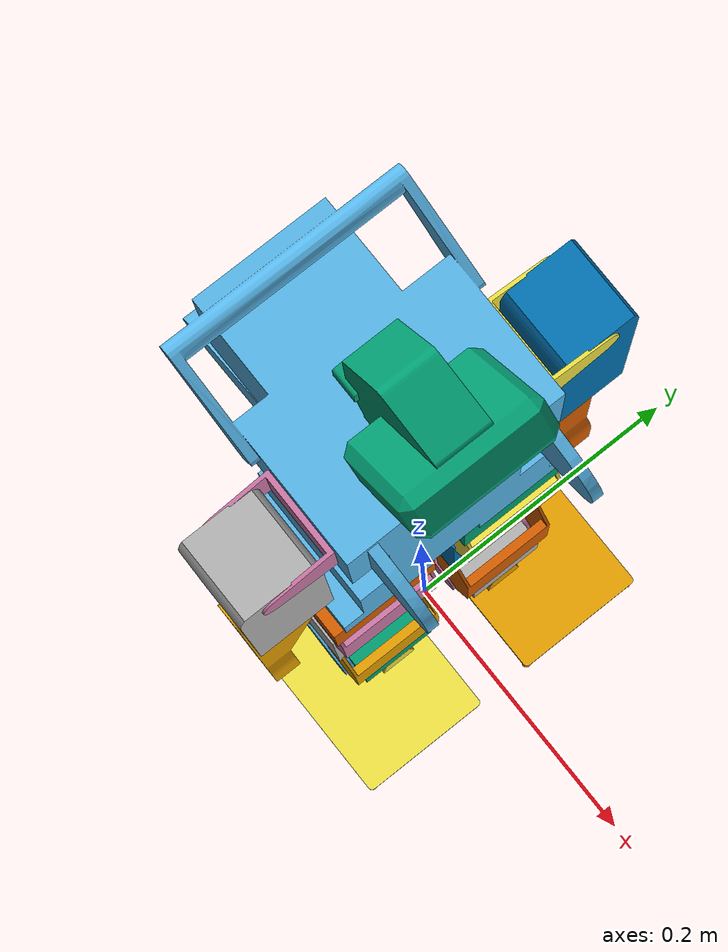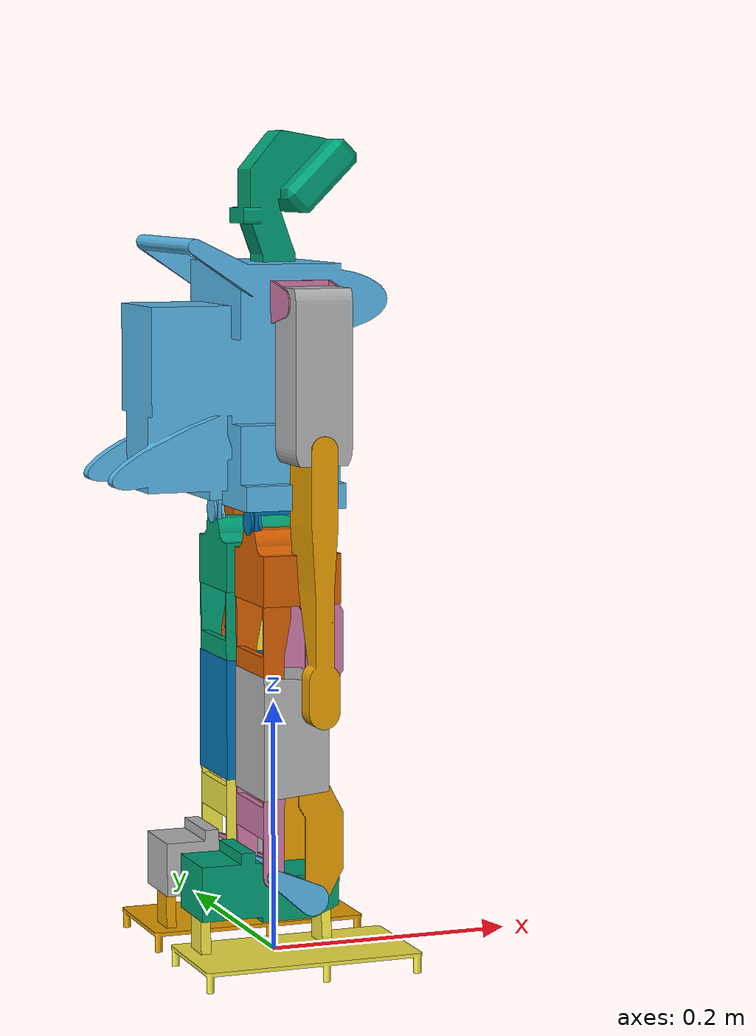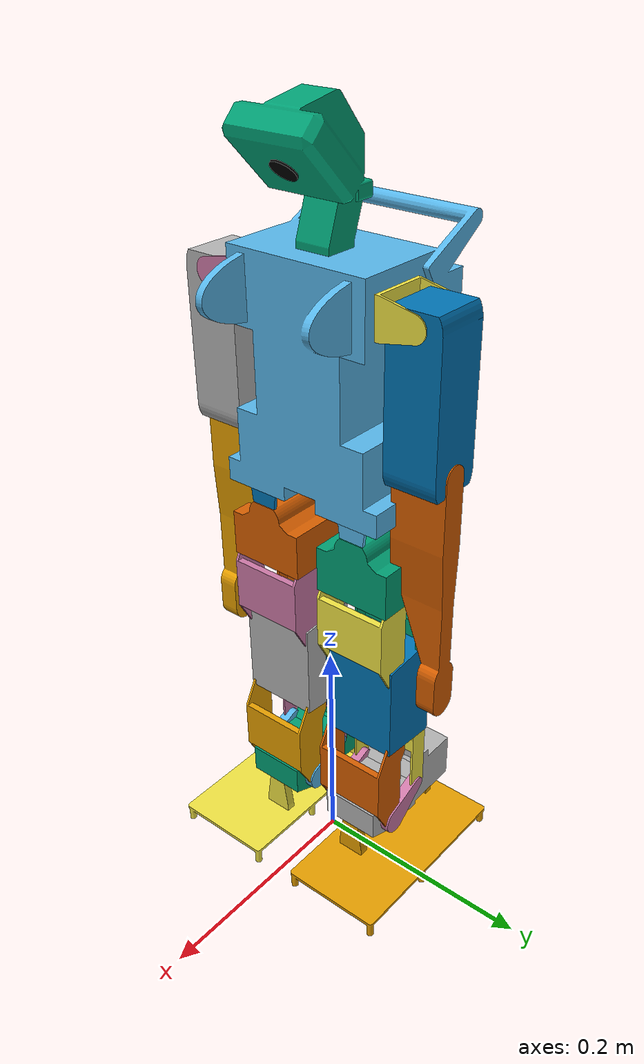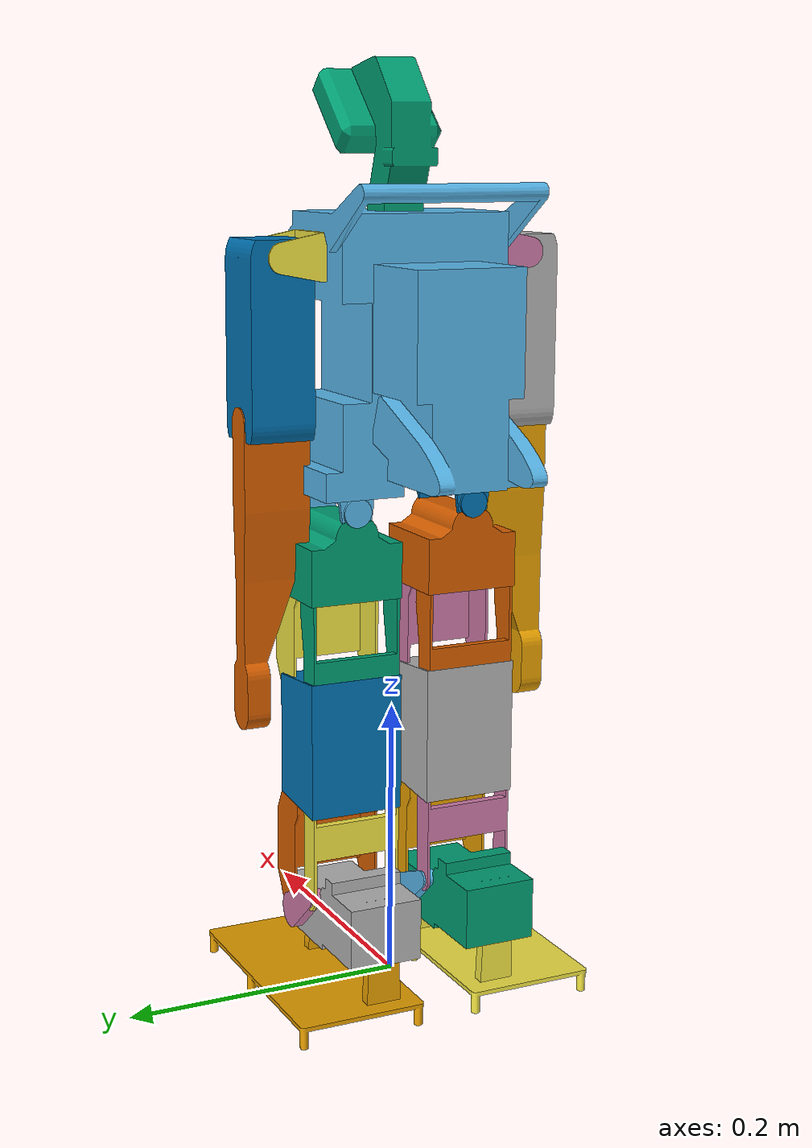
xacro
<?xml version="1.0"?>
<robot xmlns:xacro="http://www.ros.org/wiki/xacro" name="gankenkun">
  <!--Constants
  for robot dimensions -->
  <xacro:property name="PI" value="3.1415926535897931"/>

  <!-- Import Rviz color -->
  <xacro:include filename="$(find opr_description)/urdf/materials.xacro"/>

  <!-- import empty link -->
  <link name="base_link"/>
  <!-- uncomment this part to fixed the body in space (ignore gravity) -->

  <!-- import robot parts -->
  <xacro:include filename="$(find opr_description)/urdf/version4/body/body.urdf.xacro"/>
  <xacro:include filename="$(find opr_description)/urdf/version4/head/head.urdf.xacro"/>
  <xacro:include filename="$(find opr_description)/urdf/version4/arms/left_arm.urdf.xacro"/>
  <xacro:include filename="$(find opr_description)/urdf/version4/arms/right_arm.urdf.xacro"/>
  <xacro:include filename="$(find opr_description)/urdf/version4/legs/left_leg.urdf.xacro"/>
  <xacro:include filename="$(find opr_description)/urdf/version4/legs/right_leg.urdf.xacro"/>

  <!-- gazebo reference -->
  <xacro:include filename="$(find opr_description)/urdf/gazebo.xacro"/>
  <xacro:include filename="$(find opr_description)/urdf/version4/body/body.gazebo.xacro"/>
  <xacro:include filename="$(find opr_description)/urdf/version4/head/head.gazebo.xacro"/>
  <xacro:include filename="$(find opr_description)/urdf/version4/arms/arms.gazebo.xacro"/>
  <xacro:include filename="$(find opr_description)/urdf/version4/legs/legs.gazebo.xacro"/>

  <!-- transmission -->
  <xacro:include filename="$(find opr_description)/urdf/version4/head/head.transmission.xacro"/>
  <xacro:include filename="$(find opr_description)/urdf/version4/arms/arms.transmission.xacro"/>
  <xacro:include filename="$(find opr_description)/urdf/version4/legs/legs.transmission.xacro"/>

  <!-- sensors -->
  <xacro:include filename="$(find opr_description)/urdf/version4/sensors/imu.xacro"/>
  <xacro:imu name="imu" parent="body_link" update_rate="100">
    <origin xyz="0 0 0" rpy="0 0 0"/>
  </xacro:imu>
  <xacro:include filename="$(find opr_description)/urdf/version4/sensors/camera.xacro"/>
  <xacro:camera name="camera" parent="head_yaw_link">
    <origin xyz="0.036496 0 0.055504" rpy="0 ${pi /4} 0"/>
  </xacro:camera>
</robot>

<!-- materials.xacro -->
<robot xmlns:xacro="http://www.ros.org/wiki/xacro">
  <xacro:macro name="default_color" params="name color">
    <material name="${name}">
      <color rgba="${color}"/>
    </material>
  </xacro:macro>

  <xacro:default_color name="black" color="0.0 0.0 0.0 1.0"/>
  <xacro:default_color name="blue" color="0.0 0.0 0.8 1.0"/>
  <xacro:default_color name="green" color="0.0 0.8 0.0 1.0"/>
  <xacro:default_color name="grey" color="0.5 0.5 0.5 1.0"/>
  <xacro:default_color name="orange" color="${255/255} ${108/255} ${10/255} 1.0"/>
  <xacro:default_color name="brown" color="${255/255} ${207/255} ${195/255} 1.0"/>
  <xacro:default_color name="red" color="0.8 0.0 0.0 1.0"/>
  <xacro:default_color name="white" color="1.0 1.0 1.0 1.0"/>
</robot>

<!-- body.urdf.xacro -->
<robot xmlns:xacro="http://www.ros.org/wiki/xacro">
  <!-- body joint-->
  <joint name="body_joint" type="fixed">
    <parent link="base_link"/>
    <child link="body_link"/>
    <origin xyz="0 0 0.4635" rpy="0 0 0"/>
  </joint>

  <!-- body link -->
  <link name="body_link">
    <inertial>
      <origin xyz="-0.022825 0.000073 -0.015720" rpy="0 0 0"/>
      <mass value="2.645331"/>
      <inertia ixx="0.007742297482" ixy="0.000005961013" ixz="0.000422502364" iyy="0.008034384246" iyz="-0.000003797186" izz="0.003984603997"/>
    </inertial>
    <visual>
      <geometry>
        <mesh filename="package://opr_description/meshes/version4/TrunkLight.stl"/>
      </geometry>
    </visual>
    <collision>
      <origin xyz="-0.03270612440339107 -0.00010220211766156579 -0.007181904014356449" rpy="-2.882630121591322 -0.0013257236025648262 1.5704451281988223"/>
      <geometry>
        <box size="0.14548409358720668 0.1783637674020797 0.2041607213195921"/>
      </geometry>
    </collision>
  </link>
</robot>

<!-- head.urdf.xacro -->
<robot xmlns:xacro="http://www.ros.org/wiki/xacro">
  <!-- head joints -->
  <joint name="head_yaw_joint" type="revolute">
    <parent link="body_link"/>
    <child link="head_yaw_link"/>
    <origin xyz="0 0 0.0875" rpy="0 0 0"/>
    <limit effort="1000" lower="${-3*PI/4}" upper="${3*PI/4}" velocity="4.8"/>
    <axis xyz="0 0 1"/>
    <dynamics damping="0.1" friction="0.0"/>
  </joint>

  <!-- head link -->
  <link name="head_yaw_link">
    <inertial>
      <origin xyz="0.019189 -0.000533 0.057803" rpy="0 0 0"/>
      <mass value="0.160477"/>
      <inertia ixx="0.000135811588" ixy="-0.000000293359" ixz="-0.000041997404" iyy="0.000151374671" iyz="-0.000000078967" izz="0.000124729778"/>
    </inertial>
    <visual>
      <geometry>
        <mesh filename="package://opr_description/meshes/version4/HeadLight.stl"/>
      </geometry>
    </visual>
    <collision>
      <origin xyz="0.0045492063207171664 8.625779647839552e-19 0.049218710724377945" rpy="-3.141592653589793 0.5153769953275367 -1.2246467991473535e-16"/>
      <geometry>
        <box size="0.06765749574662422 0.07400000095367433 0.1137128056371003"/>
      </geometry>
    </collision>
  </link>
</robot>

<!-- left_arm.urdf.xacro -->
<robot xmlns:xacro="http://www.ros.org/wiki/xacro">
  <!-- arm joints -->
  <joint name="left_shoulder_pitch_joint" type="revolute">
    <parent link="body_link"/>
    <child link="left_shoulder_link"/>
    <origin xyz="0 0.0615 0.056" rpy="0 0 0"/>
    <limit effort="1000" lower="${-3*PI/4}" upper="${3*PI/4}" velocity="4.8"/>
    <axis xyz="0 1 0"/>
    <dynamics damping="0.1" friction="0.0"/>
  </joint>
  <joint name="left_shoulder_roll_joint" type="revolute">
    <parent link="left_shoulder_link"/>
    <child link="left_arm_link"/>
    <origin xyz="0 0.03 0" rpy="0 0 0"/>
    <limit effort="1000" lower="${-PI}" upper="${PI}" velocity="4.8"/>
    <axis xyz="1 0 0"/>
    <dynamics damping="0.1" friction="0.0"/>
  </joint>
  <joint name="left_elbow_pitch_joint" type="revolute">
    <parent link="left_arm_link"/>
    <child link="left_forearm_link"/>
    <origin xyz="0 0 -0.109" rpy="0 0 0"/>
    <limit effort="1000" lower="${-3*PI/4}" upper="${3*PI/4}" velocity="4.8"/>
    <axis xyz="0 1 0"/>
    <dynamics damping="0.1" friction="0.0"/>
  </joint>

  <!-- arm links -->
  <link name="left_shoulder_link">
    <inertial>
      <origin xyz="0 0.007843 0" rpy="${PI/2} 0 0"/>
      <mass value="0.031036"/>
      <inertia ixx="0.000006857020" ixy="0.0" ixz="0.0" izz="0.000012483012" iyz="0.0" iyy="0.000014531649"/>
    </inertial>
    <visual>
      <origin xyz="0 0 0" rpy="${PI/2} 0 0"/>
      <geometry>
        <mesh filename="package://opr_description/meshes/version4/ShoulderLight.stl"/>
      </geometry>
    </visual>
    <collision>
      <origin xyz="0.0 0.01763494312763214 -1.0798288327200158e-18" rpy="-3.141592653589793 1.5707963267948966 0.0"/>
      <geometry>
        <box size="0.03200000151991844 0.04626988619565964 0.0502999983727932"/>
      </geometry>
    </collision>
  </link>
  <link name="left_arm_link">
    <inertial>
      <origin xyz="-0.000173 -0.000173 -0.0545" rpy="0 0 0"/>
      <mass value="0.198342"/>
      <inertia ixx="0.000398226787" ixy="0.0" ixz="0.0" iyy="0.000398226787" iyz="0.0" izz="0.000042097457"/>
    </inertial>
    <visual>
      <geometry>
        <mesh filename="package://opr_description/meshes/version4/LeftUpperArmLight.stl"/>
      </geometry>
    </visual>
    <collision>
      <origin xyz="9.999983012676572e-05 9.999983012676239e-05 -0.05449999962002039" rpy="3.141592653589793 -0.0 1.5707963267948966"/>
      <geometry>
        <box size="0.045299999415874474 0.04529999941587448 0.132999999448657"/>
      </geometry>
    </collision>
  </link>
  <link name="left_forearm_link">
    <inertial>
      <origin xyz="0 0.009824 -0.126417" rpy="0 0 0"/>
      <mass value="0.06313"/>
      <inertia ixx="0.000296886941" ixy="0.000000000007" ixz="-0.000000000026" iyy="0.000284555999" iyz="-0.000025954170" izz="0.000016240155"/>
    </inertial>
    <visual>
      <geometry>
        <mesh filename="package://opr_description/meshes/version4/ForeArmLight.stl"/>
      </geometry>
    </visual>
    <collision>
      <origin xyz="1.6544247971531333e-34 2.7018807354169517e-18 -0.10078542958945036" rpy="3.141592653589793 -0.0 3.141592653589793"/>
      <geometry>
        <box size="0.02500000037252903 0.05029999837279319 0.2233708593994379"/>
      </geometry>
    </collision>
  </link>
</robot>

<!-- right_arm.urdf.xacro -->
<robot xmlns:xacro="http://www.ros.org/wiki/xacro">
  <!-- arm joints -->
  <joint name="right_shoulder_pitch_joint" type="revolute">
    <parent link="body_link"/>
    <child link="right_shoulder_link"/>
    <origin xyz="0 -0.0615 0.056" rpy="0 0 0"/>
    <limit effort="1000" lower="${-3*PI/4}" upper="${3*PI/4}" velocity="4.8"/>
    <axis xyz="0 1 0"/>
    <dynamics damping="0.1" friction="0.0"/>
  </joint>
  <joint name="right_shoulder_roll_joint" type="revolute">
    <parent link="right_shoulder_link"/>
    <child link="right_arm_link"/>
    <origin xyz="0 -0.03 0" rpy="0 0 0"/>
    <limit effort="1000" lower="${-PI}" upper="${PI}" velocity="4.8"/>
    <axis xyz="1 0 0"/>
    <dynamics damping="0.1" friction="0.0"/>
  </joint>
  <joint name="right_elbow_pitch_joint" type="revolute">
    <parent link="right_arm_link"/>
    <child link="right_forearm_link"/>
    <origin xyz="0 0 -0.109" rpy="0 0 0"/>
    <limit effort="1000" lower="${-3*PI/4}" upper="${3*PI/4}" velocity="4.8"/>
    <axis xyz="0 1 0"/>
    <dynamics damping="0.1" friction="0.0"/>
  </joint>

  <!-- arm links -->
  <link name="right_shoulder_link">
    <inertial>
      <origin xyz="0 -0.007843 0" rpy="${-PI/2} 0 0"/>
      <mass value="0.031036"/>
      <inertia ixx="0.000006857020" ixy="0.0" ixz="0.0" izz="0.000012483012" iyz="0.0" iyy="0.000014531649"/>
    </inertial>
    <visual>
      <origin xyz="0 0 0" rpy="${-PI/2} 0 0"/>
      <geometry>
        <mesh filename="package://opr_description/meshes/version4/ShoulderLight.stl"/>
      </geometry>
    </visual>
    <collision>
      <origin xyz="0.0 -0.01763494312763214 -1.0798288327200158e-18" rpy="-7.498798913309288e-33 -1.5707963267948966 0.0"/>
      <geometry>
        <box size="0.03200000151991844 0.04626988619565964 0.0502999983727932"/>
      </geometry>
    </collision>
  </link>
  <link name="right_arm_link">
    <inertial>
      <origin xyz="0.00049 -0.00049 -0.0545" rpy="0 0 0"/>
      <mass value="0.198342"/>
      <inertia ixx="0.000398185104" ixy="0.0" ixz="0.0" iyy="0.000398185104" iyz="0.0" izz="0.000042014091"/>
    </inertial>
    <visual>
      <geometry>
        <mesh filename="package://opr_description/meshes/version4/RightUpperArmLight.stl"/>
      </geometry>
    </visual>
    <collision>
      <origin xyz="-9.999983012675906e-05 9.999983012676239e-05 -0.05449999962002039" rpy="3.141592653589793 -0.0 1.5707963267948966"/>
      <geometry>
        <box size="0.045299999415874474 0.04529999941587448 0.132999999448657"/>
      </geometry>
    </collision>
  </link>
  <link name="right_forearm_link">
    <inertial>
      <origin xyz="0 -0.009824 -0.126417" rpy="0 0 ${PI}"/>
      <mass value="0.06313"/>
      <inertia ixx="0.000296886941" ixy="0.000000000007" ixz="-0.000000000026" iyy="0.000284555999" iyz="-0.000025954170" izz="0.000016240155"/>
    </inertial>
    <visual>
      <origin xyz="0 0 0" rpy="0 0 ${PI}"/>
      <geometry>
        <mesh filename="package://opr_description/meshes/version4/ForeArmLight.stl"/>
      </geometry>
    </visual>
    <collision>
      <origin xyz="-4.9632743914594e-34 -2.7018807354169517e-18 -0.10078542958945036" rpy="3.141592653589793 -0.0 -1.8369701987210297e-16"/>
      <geometry>
        <box size="0.02500000037252903 0.05029999837279319 0.2233708593994379"/>
      </geometry>
    </collision>
  </link>
</robot>

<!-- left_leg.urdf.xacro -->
<robot xmlns:xacro="http://www.ros.org/wiki/xacro">
  <!-- leg joints -->
  <joint name="left_waist_yaw_joint" type="revolute">
    <parent link="body_link"/>
    <child link="left_waist_yaw_link"/>
    <origin xyz="0.004954 0.044 -0.107" rpy="0 0 0"/>
    <limit effort="1000" lower="${-3*PI/4}" upper="${3*PI/4}" velocity="4.8"/>
    <axis xyz="0 0 1"/>
    <dynamics damping="0.0" friction="0.0"/>
  </joint>
  <joint name="left_waist_roll_joint" type="revolute">
    <parent link="left_waist_yaw_link"/>
    <child link="left_waist_roll_link"/>
    <origin xyz="0 0 -0.0425" rpy="0 0 0"/>
    <limit effort="1000" lower="${-PI/4}" upper="${PI/4}" velocity="4.8"/>
    <axis xyz="1 0 0"/>
    <dynamics damping="0.1" friction="0.0"/>
  </joint>
  <joint name="left_waist_pitch_joint" type="revolute">
    <parent link="left_waist_roll_link"/>
    <child link="left_thigh_link"/>
    <origin xyz="0 0 0" rpy="0 0 0"/>
    <limit effort="1000" lower="${-PI/2}" upper="${PI/6}" velocity="4.8"/>
    <axis xyz="0 1 0"/>
    <dynamics damping="0.1" friction="0.0"/>
  </joint>
  <joint name="left_knee_pitch_joint" type="revolute">
    <parent link="left_knee_link"/>
    <child link="left_shin_link"/>
    <origin xyz="0 0 -0.057" rpy="0 0 0"/>
    <limit effort="1000" lower="${-PI/6}" upper="${PI/2}" velocity="4.8"/>
    <axis xyz="0 1 0"/>
    <dynamics damping="0.1" friction="0.0"/>
  </joint>
  <joint name="left_ankle_pitch_joint" type="revolute">
    <parent link="left_ankle_side_link"/>
    <child link="left_ankle_link"/>
    <origin xyz="0 0 0" rpy="0 0 0"/>
    <limit effort="1000" lower="${-PI/2}" upper="${PI/2}" velocity="4.8"/>
    <axis xyz="0 1 0"/>
    <dynamics damping="0.1" friction="0.0"/>
  </joint>
  <joint name="left_ankle_roll_joint" type="revolute">
    <parent link="left_ankle_link"/>
    <child link="left_foot_link"/>
    <origin xyz="-0.031 0 0" rpy="0 0 0"/>
    <limit effort="1000" lower="${-PI/2}" upper="${PI/2}" velocity="4.8"/>
    <axis xyz="1 0 0"/>
    <dynamics damping="0.1" friction="0.0"/>
  </joint>

  <!-- mimic joints -->
  <joint name="left_slider_crank_mimic_joint" type="revolute">
    <parent link="left_waist_roll_link"/>
    <child link="left_slider_crank_link"/>
    <origin xyz="-0.0335 0 0.018" rpy="0 0 0"/>
    <limit effort="1000" lower="${-PI/2}" upper="${PI/2}" velocity="4.8"/>
    <axis xyz="1 0 0"/>
    <mimic joint="left_waist_roll_joint" multiplier="2" offset="0"/>
    <dynamics damping="0.0" friction="0.0"/>
  </joint>
  <joint name="left_knee_pitch_mimic_joint" type="revolute">
    <parent link="left_thigh_link"/>
    <child link="left_knee_link"/>
    <origin xyz="0 0 -0.1" rpy="0 0 0"/>
    <limit effort="1000" lower="${-PI/6}" upper="${PI/2}" velocity="4.8"/>
    <axis xyz="0 1 0"/>
    <mimic joint="left_waist_pitch_joint" multiplier="-1" offset="0"/>
    <dynamics damping="0.1" friction="0.0"/>
  </joint>
  <joint name="left_hamstring_mimic_joint" type="revolute">
    <parent link="left_waist_roll_link"/>
    <child link="left_hamstring_link"/>
    <origin xyz="-0.032 0 -0.02" rpy="0 0 0"/>
    <limit effort="1000" lower="${-PI/2}" upper="${PI/6}" velocity="4.8"/>
    <axis xyz="0 1 0"/>
    <mimic joint="left_waist_pitch_joint" multiplier="1" offset="0"/>
    <dynamics damping="0.1" friction="0.0"/>
  </joint>
  <joint name="left_calf_mimic_joint" type="revolute">
    <parent link="left_knee_link"/>
    <child link="left_calf_link"/>
    <origin xyz="-0.032 0 -0.037" rpy="0 0 0"/>
    <limit effort="1000" lower="${-PI/6}" upper="${PI/2}" velocity="4.8"/>
    <axis xyz="0 1 0"/>
    <mimic joint="left_knee_pitch_joint" multiplier="1" offset="0"/>
    <dynamics damping="0.1" friction="0.0"/>
  </joint>
  <joint name="left_ankle_pitch_mimic_joint" type="revolute">
    <parent link="left_shin_link"/>
    <child link="left_ankle_side_link"/>
    <origin xyz="0 0 -0.1" rpy="0 0 0"/>
    <limit effort="1000" lower="${-PI/2}" upper="${PI/2}" velocity="4.8"/>
    <axis xyz="0 1 0"/>
    <mimic joint="left_knee_pitch_joint" multiplier="-1" offset="0"/>
    <dynamics damping="0.1" friction="0.0"/>
  </joint>

  <!-- leg links -->
  <link name="left_waist_yaw_link">
    <inertial>
      <origin xyz="-0.008607 0 -0.008006" rpy="0 0 0"/>
      <mass value="0.038113"/>
      <inertia ixx="0.000012431119" ixy="0" ixz="-0.000000009667" iyy="0.000030968751" iyz="0" izz="0.000022812922"/>
    </inertial>
    <visual>
      <geometry>
        <mesh filename="package://opr_description/meshes/version4/WaistYawLight.stl"/>
      </geometry>
    </visual>
    <collision>
      <origin xyz="-0.00899999961256981 1.760429748682414e-18 -0.019749999977648258" rpy="-1.5707963267948966 6.123233995736766e-17 -1.5707963267948968"/>
      <geometry>
        <box size="0.03404976800084115 0.05949999950826168 0.06780000030994415"/>
      </geometry>
    </collision>
  </link>
  <link name="left_waist_roll_link">
    <inertial>
      <origin xyz="-0.009956 0 0.002314" rpy="0 0 0"/>
      <mass value="0.169734"/>
      <inertia ixx="0.000063728596" ixy="0" ixz="0.000008352459" iyy="0.000073380568" iyz="-0.000000058" izz="0.000071098724"/>
    </inertial>
    <visual>
      <geometry>
        <mesh filename="package://opr_description/meshes/version4/WaistRollLight.stl"/>
      </geometry>
    </visual>
    <collision>
      <origin xyz="-0.009413216904900764 3.2907542331266094e-19 0.0040390074015276105" rpy="-1.5707963267948972 -1.4688870082426757 -3.1415926535897927"/>
      <geometry>
        <box size="0.05523091202205781 0.06322201062974908 0.06750000268220901"/>
      </geometry>
    </collision>
  </link>
  <link name="left_thigh_link">
    <inertial>
      <origin xyz="0.011263 0 -0.054265" rpy="0 0 0"/>
      <mass value="0.042298"/>
      <inertia ixx="0.000070306" ixy="0" ixz="0" iyy="0.000040631" iyz="0" izz="0.000039265"/>
    </inertial>
    <visual>
      <geometry>
        <mesh filename="package://opr_description/meshes/version4/ThighLight.stl"/>
      </geometry>
    </visual>
    <collision>
      <origin xyz="0.006775000132620336 0.0 -0.051994965644553304" rpy="0.0 6.123233995736766e-17 3.141592653589793"/>
      <geometry>
        <box size="0.0364500004798174 0.06949999928474425 0.11798530584201215"/>
      </geometry>
    </collision>
  </link>
  <link name="left_knee_link">
    <inertial>
      <origin xyz="-0.013195 -0.000597 -0.028501" rpy="0 0 0"/>
      <mass value="0.292217"/>
      <inertia ixx="0.000309351160" ixy="0.000002710035" ixz="-0.000000001274" iyy="0.000297482099" iyz="-0.000000000102" izz="0.000128014307"/>
    </inertial>
    <visual>
      <geometry>
        <mesh filename="package://opr_description/meshes/version4/LeftKneeLight.stl"/>
      </geometry>
    </visual>
    <collision>
      <origin xyz="-0.014478202443569897 0.0 -0.02849999815225601" rpy="0.0 6.123233995736766e-17 3.141592653589793"/>
      <geometry>
        <box size="0.05348143819719554 0.067500002682209 0.09397687017917632"/>
      </geometry>
    </collision>
  </link>
  <link name="left_shin_link">
    <inertial>
      <origin xyz="0.011263 0 -0.045735" rpy="0 0 0"/>
      <mass value="0.042298"/>
      <inertia ixx="0.000070306" ixy="0" ixz="0" iyy="0.000040631" iyz="0" izz="0.000039265"/>
    </inertial>
    <visual>
      <geometry>
        <mesh filename="package://opr_description/meshes/version4/ShinLight.stl"/>
      </geometry>
    </visual>
    <collision>
      <origin xyz="0.006775000132620334 0.0 -0.048005031887441874" rpy="0.0 6.123233995736766e-17 3.141592653589793"/>
      <geometry>
        <box size="0.03645000047981739 0.06949999928474429 0.11798530351370574"/>
      </geometry>
    </collision>
  </link>
  <link name="left_ankle_side_link">
    <inertial>
      <origin xyz="-0.013347 0 0.008343" rpy="0 0 0"/>
      <mass value="0.023147"/>
      <inertia ixx="0.000020167808" ixy="-0.000000045124" ixz="0.000002791677" iyy="0.000007373394" iyz="-0.000000072190" izz="0.000022888907"/>
    </inertial>
    <visual>
      <geometry>
        <mesh filename="package://opr_description/meshes/version4/AnkleSideLight.stl"/>
      </geometry>
    </visual>
    <collision>
      <origin xyz="-0.011412393954674374 7.146761672779402e-20 0.01024523919989034" rpy="-1.5707963267948968 0.8390271244240705 3.141592653589793"/>
      <geometry>
        <box size="0.0249935555395753 0.055670833089966454 0.06750000268220901"/>
      </geometry>
    </collision>
  </link>
  <link name="left_ankle_link">
    <inertial>
      <origin xyz="-0.032373 0 0.005993" rpy="0 0 0"/>
      <mass value="0.251442"/>
      <inertia ixx="0.000076837363" ixy="-0.000000308474" ixz="-0.000033997201" iyy="0.000278773400" iyz="0" izz="0.000281200733"/>
    </inertial>
    <visual>
      <geometry>
        <mesh filename="package://opr_description/meshes/version4/AnkleLight.stl"/>
      </geometry>
    </visual>
    <collision>
      <origin xyz="-0.031873343670665126 9.999983012676639e-05 0.011302715725048419" rpy="1.4879617929266074 -1.0132707696249239e-17 -1.5707963267948968"/>
      <geometry>
        <box size="0.052299998700618744 0.053995914426129804 0.11384617313910501"/>
      </geometry>
    </collision>
  </link>
  <link name="left_foot_link">
    <inertial>
      <origin xyz="0.020826 0.016517 -0.039217" rpy="0 0 0"/>
      <mass value="0.098589"/>
      <inertia ixx="0.000107804945" ixy="0.000009010661" ixz="-0.000008516149" iyy="0.000362837937" iyz="-0.000007813284" izz="0.000440229333"/>
    </inertial>
    <visual>
      <geometry>
        <mesh filename="package://opr_description/meshes/version4/LeftFootLight.stl"/>
      </geometry>
    </visual>
    <collision>
      <origin xyz="0.021000001579523087 0.020999998785555363 -0.023049999959766865" rpy="-3.141592653589793 1.5707963267948966 0.0"/>
      <geometry>
        <box size="0.0679000001400709 0.09249999932944773 0.17650000005960464"/>
      </geometry>
    </collision>
  </link>
  <link name="left_slider_crank_link">
    <inertial>
      <origin xyz="-0.002952 0 0.01162" rpy="0 0 0"/>
      <mass value="0.008594"/>
      <inertia ixx="0.000000938108" ixy="0" ixz="-0.000000173459" iyy="0.000000887351" iyz="-0.000000000002" izz="0.000000292478"/>
    </inertial>
    <visual>
      <geometry>
        <mesh filename="package://opr_description/meshes/version4/SliderCrankLight.stl"/>
      </geometry>
    </visual>
    <collision>
      <origin xyz="-0.0019685261027502948 -0.00014165545717062836 0.009035958319609934" rpy="0.016349194943953056 -0.2745921378361106 -0.0044335217605196925"/>
      <geometry>
        <box size="0.014016020056229879 0.02245286538792845 0.040529081872101635"/>
      </geometry>
    </collision>
  </link>
  <link name="left_hamstring_link">
    <inertial>
      <origin xyz="-0.001824 0 -0.047726" rpy="0 0 0"/>
      <mass value="0.029252"/>
      <inertia ixx="0.000049199945" ixy="0" ixz="-0.000000651855" iyy="0.000026577036" iyz="0" izz="0.00002393766"/>
    </inertial>
    <visual>
      <geometry>
        <mesh filename="package://opr_description/meshes/version4/HamstringLight.stl"/>
      </geometry>
    </visual>
    <collision>
      <origin xyz="0.0026293317787349224 -1.6100013733620697e-19 -0.05002261372283101" rpy="3.141592653589793 -0.0 -6.123233995736766e-17"/>
      <geometry>
        <box size="0.022158662788569927 0.06949999928474428 0.11685264762490986"/>
      </geometry>
    </collision>
  </link>
  <link name="left_calf_link">
    <inertial>
      <origin xyz="-0.001824 0 -0.052274" rpy="0 0 0"/>
      <mass value="0.029252"/>
      <inertia ixx="0.000049199945" ixy="0" ixz="0.000000651855" iyy="0.000026577036" iyz="0" izz="0.000023937660"/>
    </inertial>
    <visual>
      <geometry>
        <mesh filename="package://opr_description/meshes/version4/CalfLight.stl"/>
      </geometry>
    </visual>
    <collision>
      <origin xyz="0.0026293317787349224 -1.6100013733620697e-19 -0.049977388232946396" rpy="3.141592653589793 -0.0 -6.123233995736766e-17"/>
      <geometry>
        <box size="0.022158662788569927 0.06949999928474428 0.11685264855623244"/>
      </geometry>
    </collision>
  </link>
</robot>

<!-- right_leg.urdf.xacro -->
<robot xmlns:xacro="http://www.ros.org/wiki/xacro">
  <!-- leg joints -->
  <joint name="right_waist_yaw_joint" type="revolute">
    <parent link="body_link"/>
    <child link="right_waist_yaw_link"/>
    <origin xyz="0.004954 -0.044 -0.107" rpy="0 0 0"/>
    <limit effort="1000" lower="${-3*PI/4}" upper="${3*PI/4}" velocity="4.8"/>
    <axis xyz="0 0 1"/>
    <dynamics damping="0.1" friction="0.0"/>
  </joint>
  <joint name="right_waist_roll_joint" type="revolute">
    <parent link="right_waist_yaw_link"/>
    <child link="right_waist_roll_link"/>
    <origin xyz="0 0 -0.0425" rpy="0 0 0"/>
    <limit effort="1000" lower="${-PI/4}" upper="${PI/4}" velocity="4.8"/>
    <axis xyz="1 0 0"/>
    <dynamics damping="0.1" friction="0.0"/>
  </joint>
  <joint name="right_waist_pitch_joint" type="revolute">
    <parent link="right_waist_roll_link"/>
    <child link="right_thigh_link"/>
    <origin xyz="0 0 0" rpy="0 0 0"/>
    <limit effort="1000" lower="${-PI/2}" upper="${PI/6}" velocity="4.8"/>
    <axis xyz="0 1 0"/>
    <dynamics damping="0.1" friction="0.0"/>
  </joint>
  <joint name="right_knee_pitch_joint" type="revolute">
    <parent link="right_knee_link"/>
    <child link="right_shin_link"/>
    <origin xyz="0 0 -0.057" rpy="0 0 0"/>
    <limit effort="1000" lower="${-PI/6}" upper="${PI/2}" velocity="4.8"/>
    <axis xyz="0 1 0"/>
    <dynamics damping="0.1" friction="0.0"/>
  </joint>
  <joint name="right_ankle_pitch_joint" type="revolute">
    <parent link="right_ankle_side_link"/>
    <child link="right_ankle_link"/>
    <origin xyz="0 0 0" rpy="0 0 0"/>
    <limit effort="1000" lower="${-PI/2}" upper="${PI/2}" velocity="4.8"/>
    <axis xyz="0 1 0"/>
    <dynamics damping="0.1" friction="0.0"/>
  </joint>
  <joint name="right_ankle_roll_joint" type="revolute">
    <parent link="right_ankle_link"/>
    <child link="right_foot_link"/>
    <origin xyz="-0.031 0 0" rpy="0 0 0"/>
    <limit effort="1000" lower="${-PI/2}" upper="${PI/2}" velocity="4.8"/>
    <axis xyz="1 0 0"/>
    <dynamics damping="0.1" friction="0.0"/>
  </joint>

  <!-- mimic joints -->
  <joint name="right_slider_crank_mimic_joint" type="revolute">
    <parent link="right_waist_roll_link"/>
    <child link="right_slider_crank_link"/>
    <origin xyz="-0.0335 0 0.018" rpy="0 0 0"/>
    <limit effort="1000" lower="${-PI/2}" upper="${PI/2}" velocity="4.8"/>
    <axis xyz="1 0 0"/>
    <mimic joint="right_waist_roll_joint" multiplier="-2" offset="0"/>
    <dynamics damping="0.0" friction="0.0"/>
  </joint>
  <joint name="right_hamstring_mimic_joint" type="revolute">
    <parent link="right_waist_roll_link"/>
    <child link="right_hamstring_link"/>
    <origin xyz="-0.032 0 -0.02" rpy="0 0 0"/>
    <limit effort="1000" lower="${-PI/2}" upper="${PI/6}" velocity="4.8"/>
    <axis xyz="0 1 0"/>
    <mimic joint="right_waist_pitch_joint" multiplier="1" offset="0"/>
    <dynamics damping="0.1" friction="0.0"/>
  </joint>
  <joint name="right_knee_pitch_mimic_joint" type="revolute">
    <parent link="right_thigh_link"/>
    <child link="right_knee_link"/>
    <origin xyz="0 0 -0.1" rpy="0 0 0"/>
    <limit effort="1000" lower="${-PI/6}" upper="${PI/2}" velocity="4.8"/>
    <axis xyz="0 1 0"/>
    <mimic joint="right_waist_pitch_joint" multiplier="-1" offset="0"/>
    <dynamics damping="0.1" friction="0.0"/>
  </joint>
  <joint name="right_calf_mimic_joint" type="revolute">
    <parent link="right_knee_link"/>
    <child link="right_calf_link"/>
    <origin xyz="-0.032 0 -0.037" rpy="0 0 0"/>
    <limit effort="1000" lower="${-PI/6}" upper="${PI/2}" velocity="4.8"/>
    <axis xyz="0 1 0"/>
    <mimic joint="right_knee_pitch_joint" multiplier="1" offset="0"/>
    <dynamics damping="0.1" friction="0.0"/>
  </joint>
  <joint name="right_ankle_pitch_mimic_joint" type="revolute">
    <parent link="right_shin_link"/>
    <child link="right_ankle_side_link"/>
    <origin xyz="0 0 -0.1" rpy="0 0 0"/>
    <limit effort="1000" lower="${-PI/2}" upper="${PI/2}" velocity="4.8"/>
    <axis xyz="0 1 0"/>
    <mimic joint="right_knee_pitch_joint" multiplier="-1" offset="0"/>
    <dynamics damping="0.1" friction="0.0"/>
  </joint>

  <!-- leg links -->
  <link name="right_waist_yaw_link">
    <inertial>
      <origin xyz="-0.008607 0 -0.008006" rpy="0 0 0"/>
      <mass value="0.038113"/>
      <inertia ixx="0.000012431119" ixy="0" ixz="-0.000000009667" iyy="0.000030968751" iyz="0" izz="0.000022812922"/>
    </inertial>
    <visual>
      <geometry>
        <mesh filename="package://opr_description/meshes/version4/WaistYawLight.stl"/>
      </geometry>
    </visual>
    <collision>
      <origin xyz="-0.00899999961256981 1.760429748682414e-18 -0.019749999977648258" rpy="-1.5707963267948966 6.123233995736766e-17 -1.5707963267948968"/>
      <geometry>
        <box size="0.03404976800084115 0.05949999950826168 0.06780000030994415"/>
      </geometry>
    </collision>
  </link>
  <link name="right_waist_roll_link">
    <inertial>
      <origin xyz="-0.009956 0 0.002314" rpy="0 0 0"/>
      <mass value="0.169734"/>
      <inertia ixx="0.000063728596" ixy="0" ixz="0.000008352459" iyy="0.000073380568" iyz="-0.000000058" izz="0.000071098724"/>
    </inertial>
    <visual>
      <geometry>
        <mesh filename="package://opr_description/meshes/version4/WaistRollLight.stl"/>
      </geometry>
    </visual>
    <collision>
      <origin xyz="-0.009413216904900764 3.2907542331266094e-19 0.0040390074015276105" rpy="-1.5707963267948972 -1.4688870082426757 -3.1415926535897927"/>
      <geometry>
        <box size="0.05523091202205781 0.06322201062974908 0.06750000268220901"/>
      </geometry>
    </collision>
  </link>
  <link name="right_thigh_link">
    <inertial>
      <origin xyz="0.011263 0 -0.054265" rpy="0 0 0"/>
      <mass value="0.042298"/>
      <inertia ixx="0.000070306" ixy="0" ixz="0" iyy="0.000040631" iyz="0" izz="0.000039265"/>
    </inertial>
    <visual>
      <geometry>
        <mesh filename="package://opr_description/meshes/version4/ThighLight.stl"/>
      </geometry>
    </visual>
    <collision>
      <origin xyz="0.006775000132620336 0.0 -0.051994965644553304" rpy="0.0 6.123233995736766e-17 3.141592653589793"/>
      <geometry>
        <box size="0.0364500004798174 0.06949999928474425 0.11798530584201215"/>
      </geometry>
    </collision>
  </link>
  <link name="right_knee_link">
    <inertial>
      <origin xyz="-0.013195 0.000597 -0.028501" rpy="0 0 0"/>
      <mass value="0.292217"/>
      <inertia ixx="0.000309351160" ixy="-0.000002710035" ixz="0.000000001274" iyy="0.000297482099" iyz="-0.000000000102" izz="0.000128014307"/>
    </inertial>
    <visual>
      <geometry>
        <mesh filename="package://opr_description/meshes/version4/RightKneeLight.stl"/>
      </geometry>
    </visual>
    <collision>
      <origin xyz="-0.013864013366401194 0.0 -0.028499998152256012" rpy="0.0 6.123233995736766e-17 3.141592653589793"/>
      <geometry>
        <box size="0.05348143912851811 0.067500002682209 0.09397687017917632"/>
      </geometry>
    </collision>
  </link>
  <link name="right_shin_link">
    <inertial>
      <origin xyz="0.011263 0 -0.045735" rpy="0 0 0"/>
      <mass value="0.042298"/>
      <inertia ixx="0.000070306" ixy="0" ixz="0" iyy="0.000040631" iyz="0" izz="0.000039265"/>
    </inertial>
    <visual>
      <geometry>
        <mesh filename="package://opr_description/meshes/version4/ShinLight.stl"/>
      </geometry>
    </visual>
    <collision>
      <origin xyz="0.006775000132620334 0.0 -0.048005031887441874" rpy="0.0 6.123233995736766e-17 3.141592653589793"/>
      <geometry>
        <box size="0.03645000047981739 0.06949999928474429 0.11798530351370574"/>
      </geometry>
    </collision>
  </link>
  <link name="right_ankle_side_link">
    <inertial>
      <origin xyz="-0.013347 0 0.008343" rpy="0 0 0"/>
      <mass value="0.023147"/>
      <inertia ixx="0.000020167808" ixy="-0.000000045124" ixz="0.000002791677" iyy="0.000007373394" iyz="-0.000000072190" izz="0.000022888907"/>
    </inertial>
    <visual>
      <geometry>
        <mesh filename="package://opr_description/meshes/version4/AnkleSideLight.stl"/>
      </geometry>
    </visual>
    <collision>
      <origin xyz="-0.011412393954674374 7.146761672779402e-20 0.01024523919989034" rpy="-1.5707963267948968 0.8390271244240705 3.141592653589793"/>
      <geometry>
        <box size="0.0249935555395753 0.055670833089966454 0.06750000268220901"/>
      </geometry>
    </collision>
  </link>
  <link name="right_ankle_link">
    <inertial>
      <origin xyz="-0.032373 0 0.005993" rpy="0 0 0"/>
      <mass value="0.251442"/>
      <inertia ixx="0.000076837363" ixy="-0.000000308474" ixz="-0.000033997201" iyy="0.000278773400" iyz="0" izz="0.000281200733"/>
    </inertial>
    <visual>
      <geometry>
        <mesh filename="package://opr_description/meshes/version4/AnkleLight.stl"/>
      </geometry>
    </visual>
    <collision>
      <origin xyz="-0.031873343670665126 9.999983012676639e-05 0.011302715725048419" rpy="1.4879617929266074 -1.0132707696249239e-17 -1.5707963267948968"/>
      <geometry>
        <box size="0.052299998700618744 0.053995914426129804 0.11384617313910501"/>
      </geometry>
    </collision>
  </link>
  <link name="right_foot_link">
    <inertial>
      <origin xyz="0.020826 -0.016517 -0.039217" rpy="0 0 0"/>
      <mass value="0.098589"/>
      <inertia ixx="0.000107804945" ixy="-0.000009010661" ixz="-0.000008516149" iyy="0.000362837937" iyz="0.000007813284" izz="0.000440229333"/>
    </inertial>
    <visual>
      <geometry>
        <mesh filename="package://opr_description/meshes/version4/RightFootLight.stl"/>
      </geometry>
    </visual>
    <collision>
      <origin xyz="0.021000001579523087 -0.020999998785555363 -0.023049999959766865" rpy="-3.141592653589793 1.5707963267948966 0.0"/>
      <geometry>
        <box size="0.0679000001400709 0.09249999932944773 0.17650000005960464"/>
      </geometry>
    </collision>
  </link>
  <link name="right_slider_crank_link">
    <inertial>
      <origin xyz="-0.002952 0 0.01162" rpy="0 0 0"/>
      <mass value="0.008594"/>
      <inertia ixx="0.000000938108" ixy="0" ixz="-0.000000173459" iyy="0.000000887351" iyz="-0.000000000002" izz="0.000000292478"/>
    </inertial>
    <visual>
      <geometry>
        <mesh filename="package://opr_description/meshes/version4/SliderCrankLight.stl"/>
      </geometry>
    </visual>
    <collision>
      <origin xyz="-0.0019685261027502948 -0.00014165545717062836 0.009035958319609934" rpy="0.016349194943953056 -0.2745921378361106 -0.0044335217605196925"/>
      <geometry>
        <box size="0.014016020056229879 0.02245286538792845 0.040529081872101635"/>
      </geometry>
    </collision>
  </link>
  <link name="right_hamstring_link">
    <inertial>
      <origin xyz="-0.001824 0 -0.047726" rpy="0 0 0"/>
      <mass value="0.029252"/>
      <inertia ixx="0.000049199945" ixy="0" ixz="-0.000000651855" iyy="0.000026577036" iyz="0" izz="0.00002393766"/>
    </inertial>
    <visual>
      <geometry>
        <mesh filename="package://opr_description/meshes/version4/HamstringLight.stl"/>
      </geometry>
    </visual>
    <collision>
      <origin xyz="0.0026293317787349224 -1.6100013733620697e-19 -0.05002261372283101" rpy="3.141592653589793 -0.0 -6.123233995736766e-17"/>
      <geometry>
        <box size="0.022158662788569927 0.06949999928474428 0.11685264762490986"/>
      </geometry>
    </collision>
  </link>
  <link name="right_calf_link">
    <inertial>
      <origin xyz="-0.001824 0 -0.052274" rpy="0 0 0"/>
      <mass value="0.029252"/>
      <inertia ixx="0.000049199945" ixy="0" ixz="0.000000651855" iyy="0.000026577036" iyz="0" izz="0.000023937660"/>
    </inertial>
    <visual>
      <geometry>
        <mesh filename="package://opr_description/meshes/version4/CalfLight.stl"/>
      </geometry>
    </visual>
    <collision>
      <origin xyz="0.0026293317787349224 -1.6100013733620697e-19 -0.049977388232946396" rpy="3.141592653589793 -0.0 -6.123233995736766e-17"/>
      <geometry>
        <box size="0.022158662788569927 0.06949999928474428 0.11685264855623244"/>
      </geometry>
    </collision>
  </link>
</robot>

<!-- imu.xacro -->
<robot xmlns:sensor="http://playerstage.sourceforge.net/gazebo/xmlschema/#sensor" xmlns:controller="http://playerstage.sourceforge.net/gazebo/xmlschema/#controller" xmlns:interface="http://playerstage.sourceforge.net/gazebo/xmlschema/#interface" xmlns:xacro="http://www.ros.org/wiki/xacro">
  <xacro:include filename="imu_gazebo.xacro"/>
  <xacro:macro name="imu" params="name parent:='base_link' update_rate *origin">
    <xacro:property name="depth" value="0.05"/>
    <xacro:property name="width" value="0.05"/>
    <xacro:property name="height" value="0.01"/>
    <joint name="${name}_joint" type="fixed">
      <parent link="${parent}"/>
      <child link="${name}_link"/>
      <xacro:insert_block name="origin"/>
    </joint>
    <link name="${name}_link">
      <visual>
        <origin xyz="0 0 0" rpy="0 0 0"/>
        <geometry>
          <box size="${depth} ${width} ${height}"/>
        </geometry>
        <material name="gray">
          <color rgba="0.5 0.5 0.5 1"/>
        </material>
      </visual>
      <collision>
        <origin xyz="0 0 0" rpy="0 0 0"/>
        <geometry>
          <box size="${depth} ${width} ${height}"/>
        </geometry>
      </collision>
      <inertial>
        <origin xyz="0 0 0" rpy="0 0 0"/>
        <mass value="0.001"/>
        <inertia ixx="0.00000002" ixy="0" iyy="0.00000002" ixz="0" iyz="0" izz="0.00000002"/>
      </inertial>
    </link>
    <!-- gazebo extensions -->
    <xacro:imu_gazebo name="${name}" update_rate="${update_rate}"/>
  </xacro:macro>
</robot>

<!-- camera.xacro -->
<robot xmlns:xacro="http://www.ros.org/wiki/xacro">
  <xacro:include filename="camera_gazebo.xacro"/>
  <xacro:macro name="camera" params="parent *origin name:='camera'">
    <xacro:property name="lense_depth" value="0.007"/>
    <xacro:property name="lense_radius" value="0.01"/>
    <xacro:property name="lense_offset" value="0.003"/>
    <xacro:property name="body_height" value="0.0605"/>
    <xacro:property name="body_width" value="0.050"/>
    <xacro:property name="body_depth" value="0.0921"/>
    <joint name="${name}_joint" type="fixed">
      <xacro:insert_block name="origin"/>
      <parent link="${parent}"/>
      <child link="${name}_rgb_frame"/>
    </joint>
    <link name="${name}_rgb_frame">
      <visual>
        <origin xyz="0. 0. ${lense_depth / 2 - lense_offset}" rpy="0 ${pi/2} 0"/>
        <geometry>
          <cylinder radius="${lense_radius}" length="${lense_depth}"/>
        </geometry>
        <material name="black">
          <color rgba="0. 0. 0. 1"/>
        </material>
      </visual>
      <collision>
        <origin xyz="0. 0. ${lense_depth / 2 - lense_offset}" rpy="0 ${pi/2} 0"/>
        <geometry>
          <cylinder radius="${lense_radius}" length="${lense_depth}"/>
        </geometry>
      </collision>
    </link>

    <joint name="${name}_rgb_optical_joint" type="fixed">
      <origin xyz="0. 0. 0." rpy="${-pi/2} 0 ${-pi/2}"/>
      <parent link="${name}_rgb_frame"/>
      <child link="${name}_rgb_optical_frame"/>
    </joint>
    <link name="${name}_rgb_optical_frame"/>

    <!-- gazebo extensions -->
    <xacro:camera_gazebo name="${name}"/>
  </xacro:macro>
</robot>
